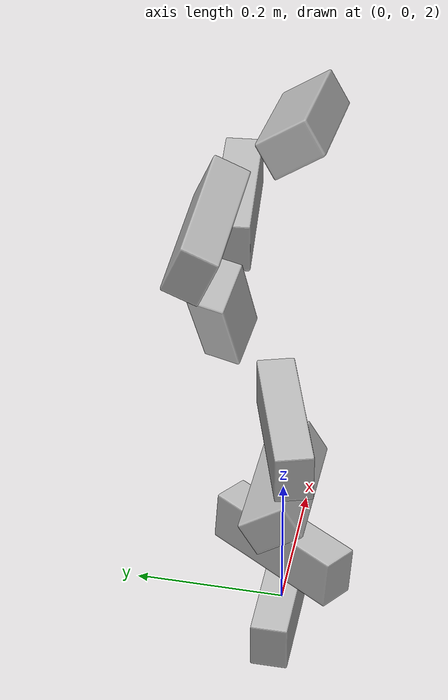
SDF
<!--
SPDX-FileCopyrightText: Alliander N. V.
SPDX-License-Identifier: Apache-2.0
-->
<sdf version="1.6">
 <world name="empty">
  <physics name="1ms" type="ignored">
   <max_step_size>0.001</max_step_size>
   <real_time_factor>1.0</real_time_factor>
  </physics>
  <plugin filename="ignition-gazebo-physics-system" name="gz::sim::systems::Physics"/>
  <plugin filename="ignition-gazebo-user-commands-system" name="gz::sim::systems::UserCommands"/>
  <plugin filename="ignition-gazebo-scene-broadcaster-system" name="gz::sim::systems::SceneBroadcaster"/>
  <plugin filename="ignition-gazebo-contact-system" name="gz::sim::systems::Contact"/>
  <plugin filename="ignition-gazebo-sensors-system" name="gz::sim::systems::Sensors"/>
  <model name="brick0"><pose>0 0 2 0 0 0</pose><include><uri>model://brick</uri></include></model>
  <model name="brick1"><pose>0 0 2.1 .1 0 1</pose><include><uri>model://brick</uri></include></model>
  <model name="brick2"><pose>0 0 2.2 1 .1 0</pose><include><uri>model://brick</uri></include></model>
  <model name="brick3"><pose>0 0 2.3 0 0 .3</pose><include><uri>model://brick</uri></include></model>
  <model name="brick4"><pose>0.1 0.1 2.4 .2 1 0</pose><include><uri>model://brick</uri></include></model>
  <model name="brick5"><pose>0.2 0.1 2.5 0 0 0.1</pose><include><uri>model://brick</uri></include></model>
  <model name="brick6"><pose>0 0.1 2.6 0.4 0 0</pose><include><uri>model://brick</uri></include></model>
  <model name="brick7"><pose>0.1 0 2.7 1 0.25 0</pose><include><uri>model://brick</uri></include></model>
  <light type="directional" name="sun">
   <pose>0 0 10 0 0 0</pose>
   <diffuse>0.8 0.8 0.8 1</diffuse>
   <specular>0.2 0.2 0.2 1</specular>
   <attenuation>
    <range>1000</range>
    <constant>0.9</constant>
    <linear>0.01</linear>
    <quadratic>0.001</quadratic>
   </attenuation>
   <direction>-0.5 0.1 -0.9</direction>
  </light>
  <model name="ground_plane">
   <static>true</static>
   <link name="link">
    <collision name="collision">
     <geometry><plane><normal>0 0 1</normal><size>100 100</size></plane></geometry>
    </collision>
    <visual name="visual">
     <geometry><plane><normal>0 0 1</normal><size>100 100</size></plane></geometry>
     <material>
      <ambient>0.8 0.8 0.8 1</ambient>
      <diffuse>0.8 0.8 0.8 1</diffuse>
      <specular>0.8 0.8 0.8 1</specular>
     </material>
    </visual>
   </link>
  </model>
 </world>
</sdf>

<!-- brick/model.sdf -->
<sdf version="1.6">
    <model name="brick">
        <pose>0 0 0 1.57079632679 0 0</pose>
        <self_collide>false</self_collide>

        <link name='brick'>
            <collision name="collision">
                <geometry>
                    <mesh>
                        <uri>resources/baksteen_collision.obj</uri>
                    </mesh>
                </geometry>
            </collision>
            <visual name='visual'>
                <geometry>
                    <mesh>
                        <uri>resources/baksteen.obj</uri>
                    </mesh>
                </geometry>
            </visual>
            <inertial>
                <mass>2.5</mass>
                <density>1920</density>
            </inertial>
        </link>
        <static>0</static>
    </model>
</sdf>
